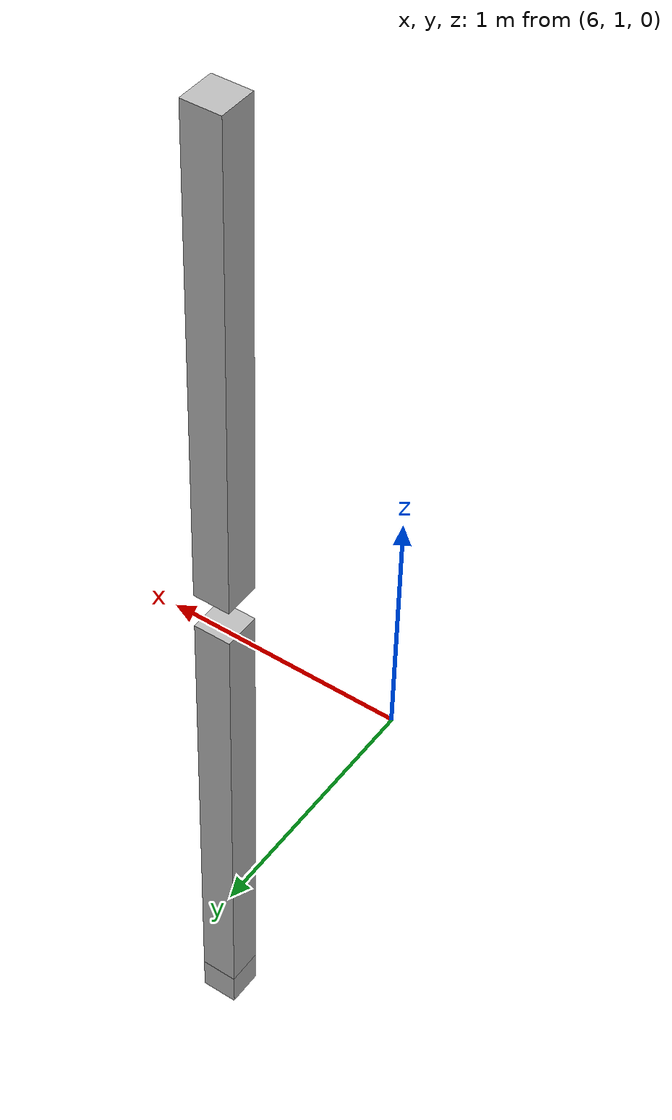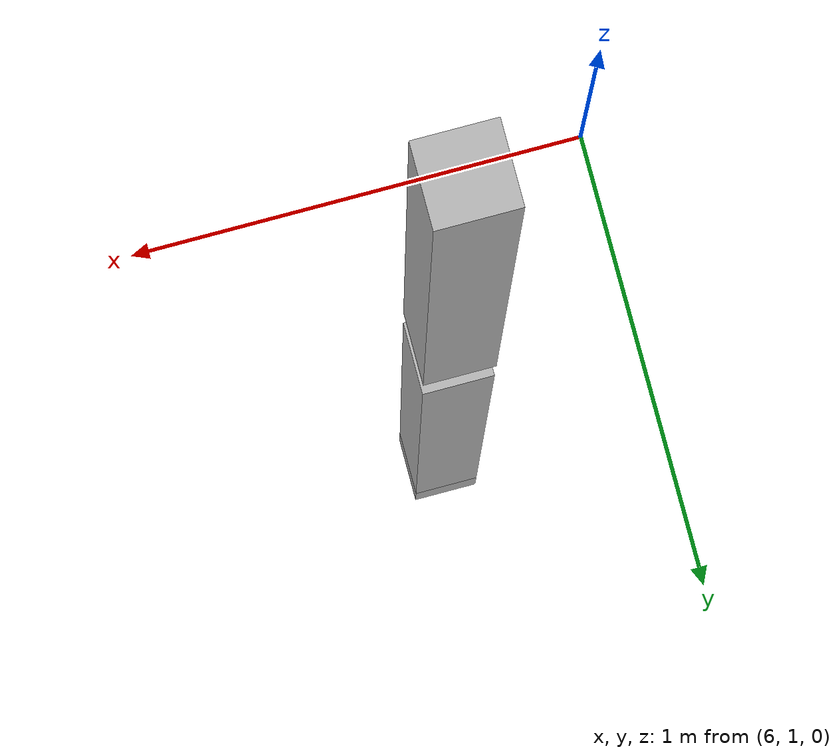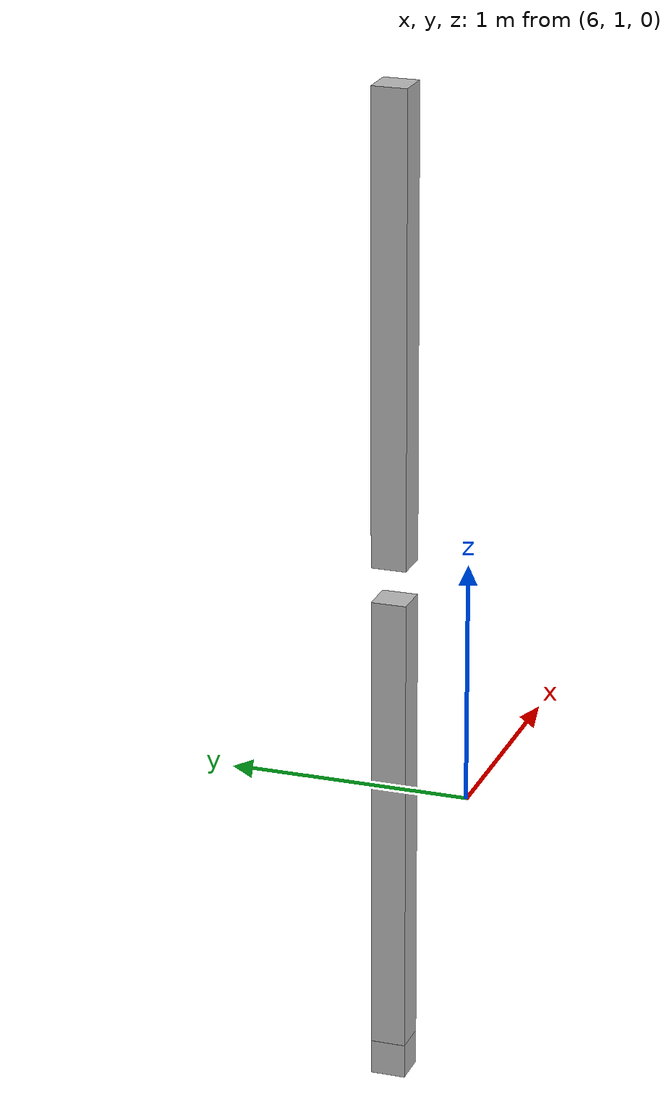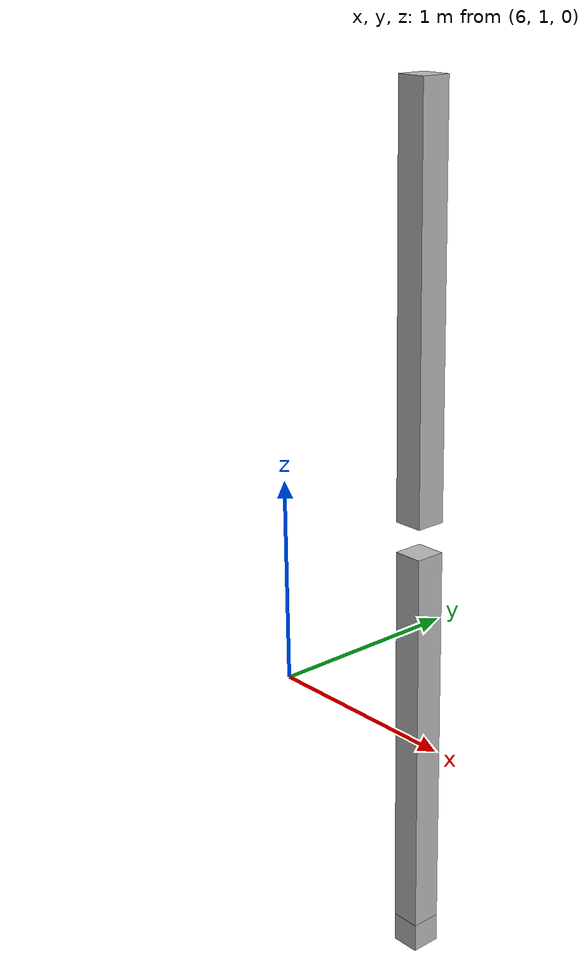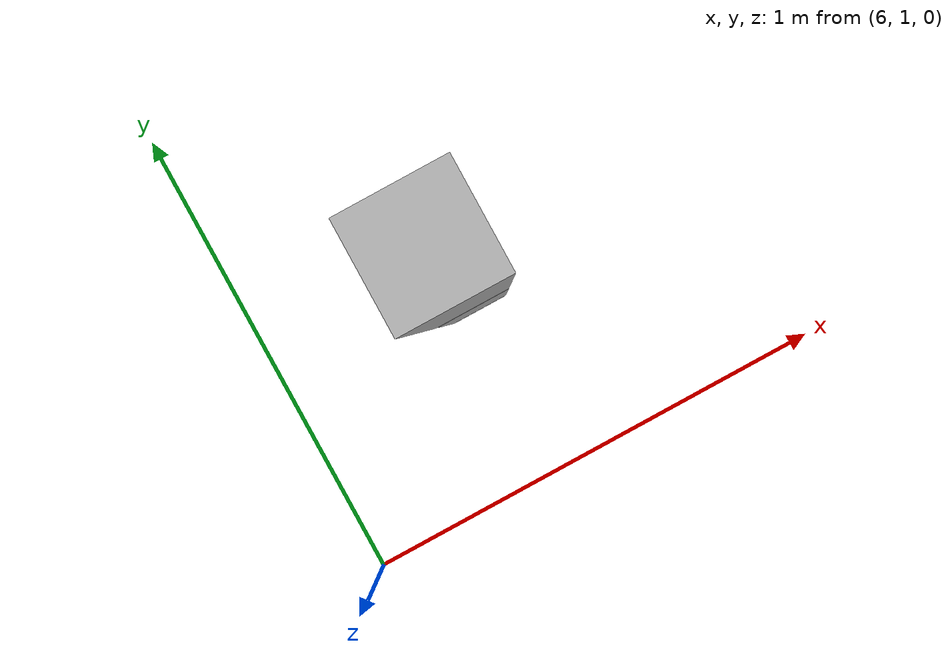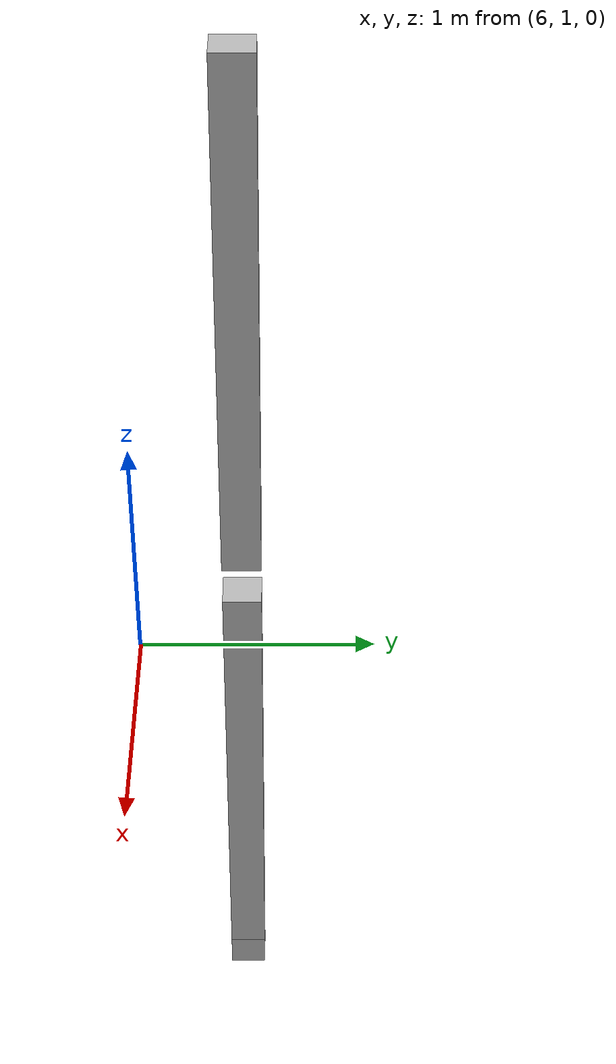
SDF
<sdf version="1.7">
 <world name="default">
  <model name="orthogonal_747_2.000.15_TS">
   <static>1</static>
   <link name="u_link_0_3_6">
    <inertial>
     <mass>1</mass>
     <inertia>
      <ixx>0.166667</ixx>
      <ixy>0</ixy>
      <ixz>0</ixz>
      <iyy>0.166667</iyy>
      <iyz>0</iyz>
      <izz>0.166667</izz>
     </inertia>
    </inertial>
    <pose>12.9 6.45 1.075 0 -0 0</pose>
    <visual name="visual_0">
     <laser_retro>624</laser_retro>
     <geometry><box><size>0.15 1e-06 0.15</size></box></geometry>
     <material>
      <script><name>Gazebo/Grey</name><uri>file://media/materials/scripts/gazebo.material</uri></script>
      <shader type="pixel"><normal_map>__default__</normal_map></shader>
      <ambient>0.678 0.498 0.659 1</ambient>
      <diffuse>0.7 0.7 0.7 1</diffuse>
      <specular>0.01 0.01 0.01 1</specular>
      <emissive>0 0 0 1</emissive>
     </material>
     <pose>0 -0.075 0 0 -0 0</pose>
     <transparency>1</transparency>
    </visual>
    <visual name="visual_1">
     <laser_retro>625</laser_retro>
     <geometry><box><size>0.15 1e-06 0.15</size></box></geometry>
     <material>
      <script><name>Gazebo/Grey</name><uri>file://media/materials/scripts/gazebo.material</uri></script>
      <shader type="pixel"><normal_map>__default__</normal_map></shader>
      <ambient>0.447 0.624 0.812 1</ambient>
      <diffuse>0.7 0.7 0.7 1</diffuse>
      <specular>0.01 0.01 0.01 1</specular>
      <emissive>0 0 0 1</emissive>
     </material>
     <pose>0 0.075 0 0 -0 0</pose>
     <transparency>1</transparency>
    </visual>
    <visual name="visual_2">
     <laser_retro>626</laser_retro>
     <geometry><box><size>0.15 0.15 1e-06</size></box></geometry>
     <material>
      <script><name>Gazebo/Grey</name><uri>file://media/materials/scripts/gazebo.material</uri></script>
      <shader type="pixel"><normal_map>__default__</normal_map></shader>
      <ambient>0.988 0.686 0.243 1</ambient>
      <diffuse>0.7 0.7 0.7 1</diffuse>
      <specular>0.01 0.01 0.01 1</specular>
      <emissive>0 0 0 1</emissive>
     </material>
     <pose>0 0 -0.075 0 -0 0</pose>
     <transparency>1</transparency>
    </visual>
    <visual name="visual_3">
     <laser_retro>627</laser_retro>
     <geometry><box><size>1e-06 0.15 0.15</size></box></geometry>
     <material>
      <script><name>Gazebo/Grey</name><uri>file://media/materials/scripts/gazebo.material</uri></script>
      <shader type="pixel"><normal_map>__default__</normal_map></shader>
      <ambient>0.988 0.914 0.31 1</ambient>
      <diffuse>0.7 0.7 0.7 1</diffuse>
      <specular>0.01 0.01 0.01 1</specular>
      <emissive>0 0 0 1</emissive>
     </material>
     <pose>0.075 0 0 0 -0 0</pose>
     <transparency>1</transparency>
    </visual>
    <visual name="visual_4">
     <laser_retro>628</laser_retro>
     <geometry><box><size>0.15 0.15 1e-06</size></box></geometry>
     <material>
      <script><name>Gazebo/Grey</name><uri>file://media/materials/scripts/gazebo.material</uri></script>
      <shader type="pixel"><normal_map>__default__</normal_map></shader>
      <ambient>0.937 0.161 0.161 1</ambient>
      <diffuse>0.7 0.7 0.7 1</diffuse>
      <specular>0.01 0.01 0.01 1</specular>
      <emissive>0 0 0 1</emissive>
     </material>
     <pose>0 0 0.075 0 -0 0</pose>
     <transparency>1</transparency>
    </visual>
    <visual name="visual_5">
     <laser_retro>629</laser_retro>
     <geometry><box><size>1e-06 0.15 0.15</size></box></geometry>
     <material>
      <script><name>Gazebo/Grey</name><uri>file://media/materials/scripts/gazebo.material</uri></script>
      <shader type="pixel"><normal_map>__default__</normal_map></shader>
      <ambient>0.541 0.886 0.204 1</ambient>
      <diffuse>0.7 0.7 0.7 1</diffuse>
      <specular>0.01 0.01 0.01 1</specular>
      <emissive>0 0 0 1</emissive>
     </material>
     <pose>-0.075 0 0 0 -0 0</pose>
     <transparency>1</transparency>
    </visual>
    <visual name="visual_texture">
     <geometry><box><size>0.149985 0.149985 0.149985</size></box></geometry>
     <material>
      <script>
       <uri>model://BASE_MODELS/simple_block_v2_textured/materials/scripts</uri>
       <uri>model://BASE_MODELS/simple_block_v2_textured/materials/textures</uri>
       <name>metal</name>
      </script>
     </material>
     <laser_retro>630</laser_retro>
    </visual>
    <collision name="collision">
     <geometry><box><size>0.15 0.15 0.15</size></box></geometry>
     <surface>
      <friction>
       <ode><mu>1</mu><mu2>1</mu2><fdir1>0 0 0</fdir1><slip1>0</slip1><slip2>0</slip2></ode>
       <torsional>
        <coefficient>1</coefficient>
        <patch_radius>0</patch_radius>
        <surface_radius>0</surface_radius>
        <use_patch_radius>1</use_patch_radius>
        <ode><slip>0</slip></ode>
       </torsional>
      </friction>
      <bounce><restitution_coefficient>0</restitution_coefficient><threshold>1e+06</threshold></bounce>
      <contact>
       <collide_without_contact>0</collide_without_contact>
       <collide_without_contact_bitmask>1</collide_without_contact_bitmask>
       <collide_bitmask>1</collide_bitmask>
       <ode>
        <soft_cfm>0</soft_cfm>
        <soft_erp>0.2</soft_erp>
        <kp>1e+13</kp>
        <kd>1</kd>
        <max_vel>0.01</max_vel>
        <min_depth>0</min_depth>
       </ode>
       <bullet>
        <split_impulse>1</split_impulse>
        <split_impulse_penetration_threshold>-0.01</split_impulse_penetration_threshold>
        <soft_cfm>0</soft_cfm>
        <soft_erp>0.2</soft_erp>
        <kp>1e+13</kp>
        <kd>1</kd>
       </bullet>
      </contact>
     </surface>
    </collision>
   </link>
   <link name="z_link_1_3_6">
    <inertial>
     <mass>1</mass>
     <inertia>
      <ixx>0.166667</ixx>
      <ixy>0</ixy>
      <ixz>0</ixz>
      <iyy>0.166667</iyy>
      <iyz>0</iyz>
      <izz>0.166667</izz>
     </inertia>
    </inertial>
    <pose>12.9 6.45 2.15 0 -0 0</pose>
    <visual name="visual_0">
     <laser_retro>1464</laser_retro>
     <geometry><box><size>0.15 1e-06 2</size></box></geometry>
     <material>
      <script><name>Gazebo/Grey</name><uri>file://media/materials/scripts/gazebo.material</uri></script>
      <shader type="pixel"><normal_map>__default__</normal_map></shader>
      <ambient>0.678 0.498 0.659 1</ambient>
      <diffuse>0.7 0.7 0.7 1</diffuse>
      <specular>0.01 0.01 0.01 1</specular>
      <emissive>0 0 0 1</emissive>
     </material>
     <pose>0 -0.075 0 0 -0 0</pose>
     <transparency>1</transparency>
    </visual>
    <visual name="visual_1">
     <laser_retro>1465</laser_retro>
     <geometry><box><size>0.15 1e-06 2</size></box></geometry>
     <material>
      <script><name>Gazebo/Grey</name><uri>file://media/materials/scripts/gazebo.material</uri></script>
      <shader type="pixel"><normal_map>__default__</normal_map></shader>
      <ambient>0.447 0.624 0.812 1</ambient>
      <diffuse>0.7 0.7 0.7 1</diffuse>
      <specular>0.01 0.01 0.01 1</specular>
      <emissive>0 0 0 1</emissive>
     </material>
     <pose>0 0.075 0 0 -0 0</pose>
     <transparency>1</transparency>
    </visual>
    <visual name="visual_2">
     <laser_retro>1466</laser_retro>
     <geometry><box><size>0.15 0.15 1e-06</size></box></geometry>
     <material>
      <script><name>Gazebo/Grey</name><uri>file://media/materials/scripts/gazebo.material</uri></script>
      <shader type="pixel"><normal_map>__default__</normal_map></shader>
      <ambient>0.988 0.686 0.243 1</ambient>
      <diffuse>0.7 0.7 0.7 1</diffuse>
      <specular>0.01 0.01 0.01 1</specular>
      <emissive>0 0 0 1</emissive>
     </material>
     <pose>0 0 -1 0 -0 0</pose>
     <transparency>1</transparency>
    </visual>
    <visual name="visual_3">
     <laser_retro>1467</laser_retro>
     <geometry><box><size>1e-06 0.15 2</size></box></geometry>
     <material>
      <script><name>Gazebo/Grey</name><uri>file://media/materials/scripts/gazebo.material</uri></script>
      <shader type="pixel"><normal_map>__default__</normal_map></shader>
      <ambient>0.988 0.914 0.31 1</ambient>
      <diffuse>0.7 0.7 0.7 1</diffuse>
      <specular>0.01 0.01 0.01 1</specular>
      <emissive>0 0 0 1</emissive>
     </material>
     <pose>0.075 0 0 0 -0 0</pose>
     <transparency>1</transparency>
    </visual>
    <visual name="visual_4">
     <laser_retro>1468</laser_retro>
     <geometry><box><size>0.15 0.15 1e-06</size></box></geometry>
     <material>
      <script><name>Gazebo/Grey</name><uri>file://media/materials/scripts/gazebo.material</uri></script>
      <shader type="pixel"><normal_map>__default__</normal_map></shader>
      <ambient>0.937 0.161 0.161 1</ambient>
      <diffuse>0.7 0.7 0.7 1</diffuse>
      <specular>0.01 0.01 0.01 1</specular>
      <emissive>0 0 0 1</emissive>
     </material>
     <pose>0 0 1 0 -0 0</pose>
     <transparency>1</transparency>
    </visual>
    <visual name="visual_5">
     <laser_retro>1469</laser_retro>
     <geometry><box><size>1e-06 0.15 2</size></box></geometry>
     <material>
      <script><name>Gazebo/Grey</name><uri>file://media/materials/scripts/gazebo.material</uri></script>
      <shader type="pixel"><normal_map>__default__</normal_map></shader>
      <ambient>0.541 0.886 0.204 1</ambient>
      <diffuse>0.7 0.7 0.7 1</diffuse>
      <specular>0.01 0.01 0.01 1</specular>
      <emissive>0 0 0 1</emissive>
     </material>
     <pose>-0.075 0 0 0 -0 0</pose>
     <transparency>1</transparency>
    </visual>
    <visual name="visual_texture">
     <geometry><box><size>0.149985 0.149985 1.9998</size></box></geometry>
     <material>
      <script>
       <uri>model://BASE_MODELS/simple_block_v2_textured/materials/scripts</uri>
       <uri>model://BASE_MODELS/simple_block_v2_textured/materials/textures</uri>
       <name>metal</name>
      </script>
     </material>
     <laser_retro>1470</laser_retro>
    </visual>
    <collision name="collision">
     <geometry><box><size>0.15 0.15 2</size></box></geometry>
     <surface>
      <friction>
       <ode><mu>1</mu><mu2>1</mu2><fdir1>0 0 0</fdir1><slip1>0</slip1><slip2>0</slip2></ode>
       <torsional>
        <coefficient>1</coefficient>
        <patch_radius>0</patch_radius>
        <surface_radius>0</surface_radius>
        <use_patch_radius>1</use_patch_radius>
        <ode><slip>0</slip></ode>
       </torsional>
      </friction>
      <bounce><restitution_coefficient>0</restitution_coefficient><threshold>1e+06</threshold></bounce>
      <contact>
       <collide_without_contact>0</collide_without_contact>
       <collide_without_contact_bitmask>1</collide_without_contact_bitmask>
       <collide_bitmask>1</collide_bitmask>
       <ode>
        <soft_cfm>0</soft_cfm>
        <soft_erp>0.2</soft_erp>
        <kp>1e+13</kp>
        <kd>1</kd>
        <max_vel>0.01</max_vel>
        <min_depth>0</min_depth>
       </ode>
       <bullet>
        <split_impulse>1</split_impulse>
        <split_impulse_penetration_threshold>-0.01</split_impulse_penetration_threshold>
        <soft_cfm>0</soft_cfm>
        <soft_erp>0.2</soft_erp>
        <kp>1e+13</kp>
        <kd>1</kd>
       </bullet>
      </contact>
     </surface>
    </collision>
   </link>
   <link name="z_link_2_3_6">
    <inertial>
     <mass>1</mass>
     <inertia>
      <ixx>0.166667</ixx>
      <ixy>0</ixy>
      <ixz>0</ixz>
      <iyy>0.166667</iyy>
      <iyz>0</iyz>
      <izz>0.166667</izz>
     </inertia>
    </inertial>
    <pose>12.9 6.45 4.3 0 -0 0</pose>
    <visual name="visual_0">
     <laser_retro>2367</laser_retro>
     <geometry><box><size>0.15 1e-06 2</size></box></geometry>
     <material>
      <script><name>Gazebo/Grey</name><uri>file://media/materials/scripts/gazebo.material</uri></script>
      <shader type="pixel"><normal_map>__default__</normal_map></shader>
      <ambient>0.678 0.498 0.659 1</ambient>
      <diffuse>0.7 0.7 0.7 1</diffuse>
      <specular>0.01 0.01 0.01 1</specular>
      <emissive>0 0 0 1</emissive>
     </material>
     <pose>0 -0.075 0 0 -0 0</pose>
     <transparency>1</transparency>
    </visual>
    <visual name="visual_1">
     <laser_retro>2368</laser_retro>
     <geometry><box><size>0.15 1e-06 2</size></box></geometry>
     <material>
      <script><name>Gazebo/Grey</name><uri>file://media/materials/scripts/gazebo.material</uri></script>
      <shader type="pixel"><normal_map>__default__</normal_map></shader>
      <ambient>0.447 0.624 0.812 1</ambient>
      <diffuse>0.7 0.7 0.7 1</diffuse>
      <specular>0.01 0.01 0.01 1</specular>
      <emissive>0 0 0 1</emissive>
     </material>
     <pose>0 0.075 0 0 -0 0</pose>
     <transparency>1</transparency>
    </visual>
    <visual name="visual_2">
     <laser_retro>2369</laser_retro>
     <geometry><box><size>0.15 0.15 1e-06</size></box></geometry>
     <material>
      <script><name>Gazebo/Grey</name><uri>file://media/materials/scripts/gazebo.material</uri></script>
      <shader type="pixel"><normal_map>__default__</normal_map></shader>
      <ambient>0.988 0.686 0.243 1</ambient>
      <diffuse>0.7 0.7 0.7 1</diffuse>
      <specular>0.01 0.01 0.01 1</specular>
      <emissive>0 0 0 1</emissive>
     </material>
     <pose>0 0 -1 0 -0 0</pose>
     <transparency>1</transparency>
    </visual>
    <visual name="visual_3">
     <laser_retro>2370</laser_retro>
     <geometry><box><size>1e-06 0.15 2</size></box></geometry>
     <material>
      <script><name>Gazebo/Grey</name><uri>file://media/materials/scripts/gazebo.material</uri></script>
      <shader type="pixel"><normal_map>__default__</normal_map></shader>
      <ambient>0.988 0.914 0.31 1</ambient>
      <diffuse>0.7 0.7 0.7 1</diffuse>
      <specular>0.01 0.01 0.01 1</specular>
      <emissive>0 0 0 1</emissive>
     </material>
     <pose>0.075 0 0 0 -0 0</pose>
     <transparency>1</transparency>
    </visual>
    <visual name="visual_4">
     <laser_retro>2371</laser_retro>
     <geometry><box><size>0.15 0.15 1e-06</size></box></geometry>
     <material>
      <script><name>Gazebo/Grey</name><uri>file://media/materials/scripts/gazebo.material</uri></script>
      <shader type="pixel"><normal_map>__default__</normal_map></shader>
      <ambient>0.937 0.161 0.161 1</ambient>
      <diffuse>0.7 0.7 0.7 1</diffuse>
      <specular>0.01 0.01 0.01 1</specular>
      <emissive>0 0 0 1</emissive>
     </material>
     <pose>0 0 1 0 -0 0</pose>
     <transparency>1</transparency>
    </visual>
    <visual name="visual_5">
     <laser_retro>2372</laser_retro>
     <geometry><box><size>1e-06 0.15 2</size></box></geometry>
     <material>
      <script><name>Gazebo/Grey</name><uri>file://media/materials/scripts/gazebo.material</uri></script>
      <shader type="pixel"><normal_map>__default__</normal_map></shader>
      <ambient>0.541 0.886 0.204 1</ambient>
      <diffuse>0.7 0.7 0.7 1</diffuse>
      <specular>0.01 0.01 0.01 1</specular>
      <emissive>0 0 0 1</emissive>
     </material>
     <pose>-0.075 0 0 0 -0 0</pose>
     <transparency>1</transparency>
    </visual>
    <visual name="visual_texture">
     <geometry><box><size>0.149985 0.149985 1.9998</size></box></geometry>
     <material>
      <script>
       <uri>model://BASE_MODELS/simple_block_v2_textured/materials/scripts</uri>
       <uri>model://BASE_MODELS/simple_block_v2_textured/materials/textures</uri>
       <name>metal</name>
      </script>
     </material>
     <laser_retro>2373</laser_retro>
    </visual>
    <collision name="collision">
     <geometry><box><size>0.15 0.15 2</size></box></geometry>
     <surface>
      <friction>
       <ode><mu>1</mu><mu2>1</mu2><fdir1>0 0 0</fdir1><slip1>0</slip1><slip2>0</slip2></ode>
       <torsional>
        <coefficient>1</coefficient>
        <patch_radius>0</patch_radius>
        <surface_radius>0</surface_radius>
        <use_patch_radius>1</use_patch_radius>
        <ode><slip>0</slip></ode>
       </torsional>
      </friction>
      <bounce><restitution_coefficient>0</restitution_coefficient><threshold>1e+06</threshold></bounce>
      <contact>
       <collide_without_contact>0</collide_without_contact>
       <collide_without_contact_bitmask>1</collide_without_contact_bitmask>
       <collide_bitmask>1</collide_bitmask>
       <ode>
        <soft_cfm>0</soft_cfm>
        <soft_erp>0.2</soft_erp>
        <kp>1e+13</kp>
        <kd>1</kd>
        <max_vel>0.01</max_vel>
        <min_depth>0</min_depth>
       </ode>
       <bullet>
        <split_impulse>1</split_impulse>
        <split_impulse_penetration_threshold>-0.01</split_impulse_penetration_threshold>
        <soft_cfm>0</soft_cfm>
        <soft_erp>0.2</soft_erp>
        <kp>1e+13</kp>
        <kd>1</kd>
       </bullet>
      </contact>
     </surface>
    </collision>
   </link>
   <pose>-6.47624 -5 -2.5 0 -0 0</pose>
  </model>
 </world>
</sdf>
